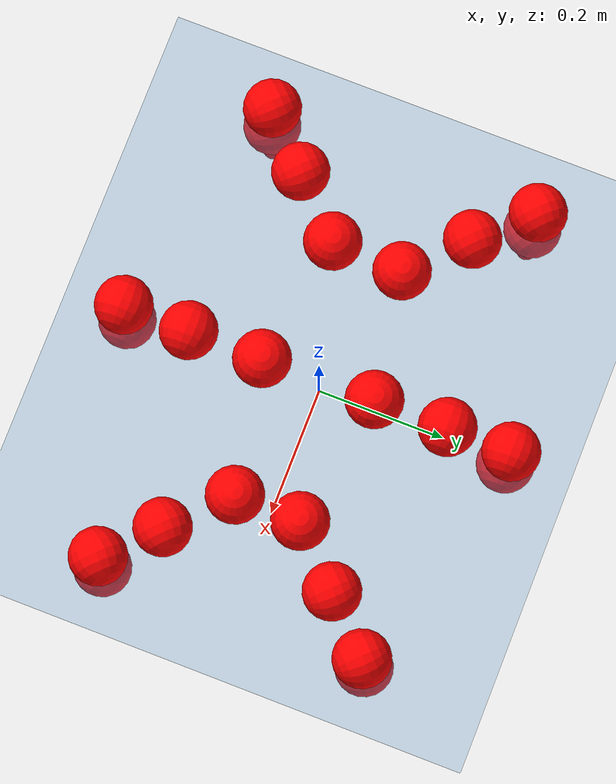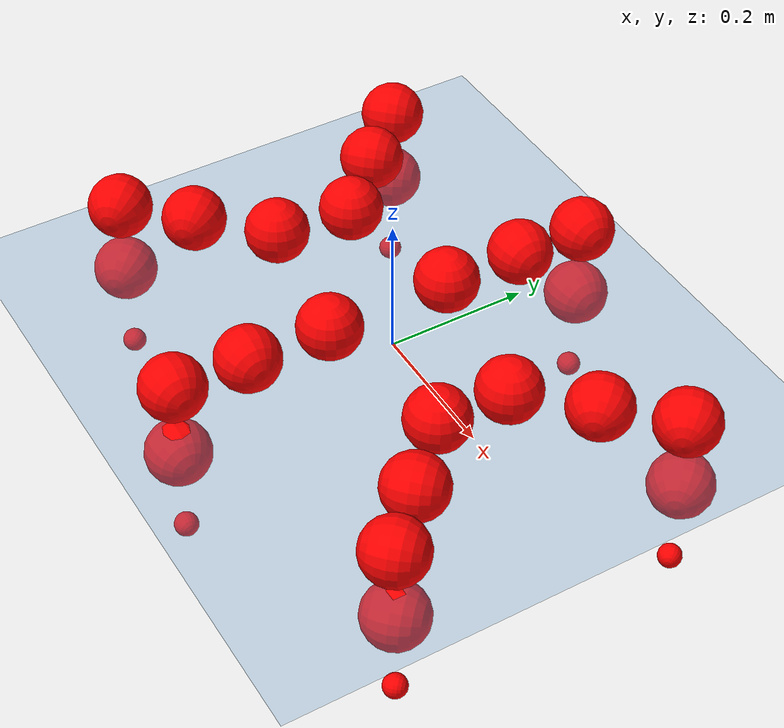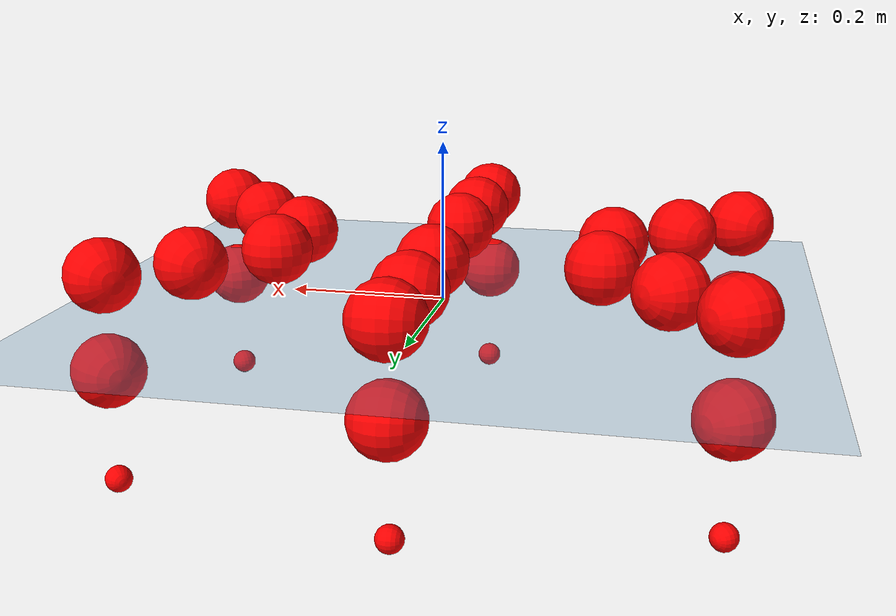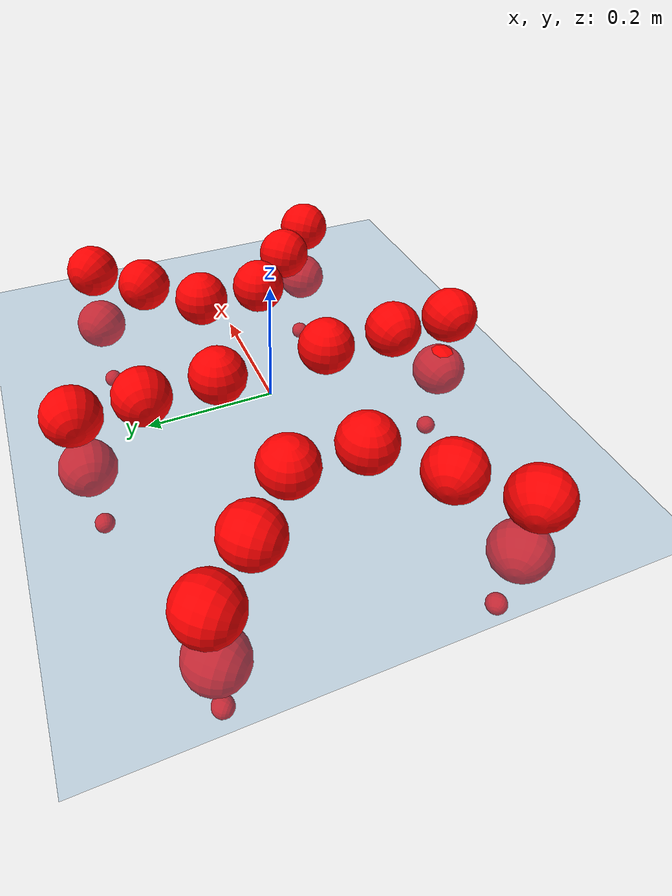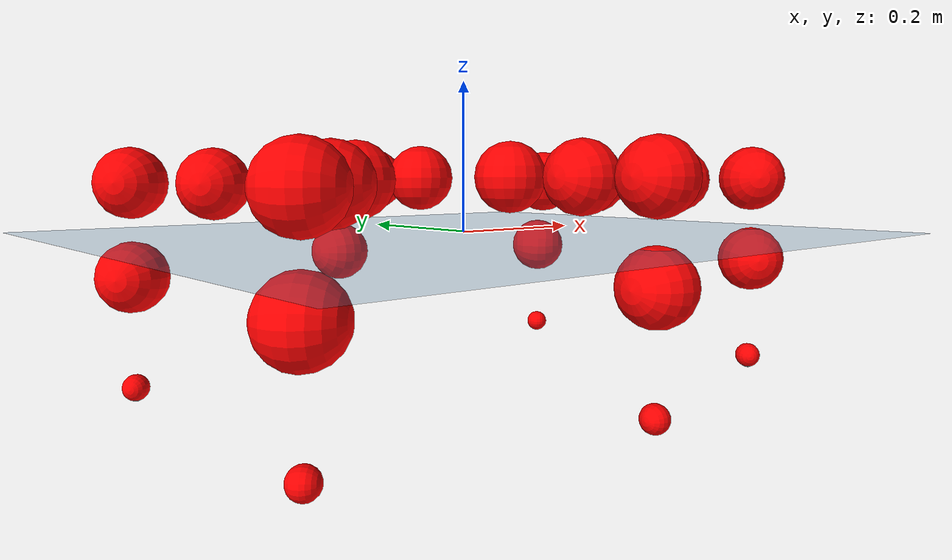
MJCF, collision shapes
<mujoco model="Golem">
  <compiler angle="radian" assetdir="assets" balanceinertia="true" inertiafromgeom="false"/>

  <option timestep="0.005" density="1.2" viscosity="2e-05"/>

  <size nkey="1"/>

  <visual>
    <quality shadowsize="8192"/>
    <map shadowclip="0.5"/>
  </visual>

  <default>
    <default class="/">
      <joint armature="0.01" damping="0.01" frictionloss="0.01"/>
      <geom contype="0" conaffinity="0" group="1" solref="-1000 -80"/>
      <site size="0.01 0.005 0.005" group="5"/>
      <general forcelimited="true" biastype="affine" gainprm="25" biasprm="0 -25 -0.5"/>
      <default class="visual">
        <geom type="mesh" group="2"/>
      </default>
      <default class="collision">
        <geom group="3"/>
      </default>
      <default class="foot">
        <geom size="0.01 0 0" condim="6" group="4" priority="1" solimp="0.015 1 0.01"/>
      </default>
      <default class="reward_collision_sphere">
        <geom group="5" rgba="1 0 0 1"/>
      </default>
    </default>
  </default>

  <asset>
    <texture type="skybox" colorspace="auto" name="//unnamed_texture_0" builtin="gradient" rgb1="0.95 0.95 0.95" rgb2="0.95 0.95 0.95" width="100" height="600"/>
    <texture type="2d" colorspace="auto" name="texplane" builtin="checker" rgb1="0.345 0.575 0.748" rgb2="0.345 0.575 0.748" markrgb="1 1 1" width="512" height="512"/>
    <material name="MatPlane" class="/" texture="texplane" texuniform="true" texrepeat="2 2" specular="0.9"/>
    <mesh name="body" class="/" file="body.stl" scale="0.001 0.001 0.001"/>
    <mesh name="coxa" class="/" file="coxa.stl" scale="0.001 0.001 0.001"/>
    <mesh name="femur" class="/" file="femur.stl" scale="0.001 0.001 0.001"/>
    <mesh name="tibia" class="/" file="tibia.stl" scale="0.001 0.001 0.001"/>
    <mesh name="tarsus" class="/" file="tarsus.stl" scale="0.001 0.001 0.001"/>
  </asset>

  <worldbody>
    <geom name="floor" class="/" size="100 100 0.125" type="plane" group="0" material="MatPlane"/>
    <light name="toplight_shadow" class="/" pos="0 0 5" dir="0.0990148 0.0990148 -0.990148" type="directional" ambient="0.04 0.04 0.04" diffuse="0.55 0.55 0.55" specular="0.12 0.12 0.12"/>
    <light name="toplight_fill" class="/" pos="0 0 5" dir="0.0990148 0.0990148 -0.990148" type="directional" castshadow="false" ambient="0.04 0.04 0.04" diffuse="0.3 0.3 0.3" specular="0.08 0.08 0.08"/>
    <body name="trunk" pos="-0.00280549 -0.00282252 0.000133565" quat="0.999999 -0.000467542 0.00104368 -0.000403769">
      <inertial pos="0.0031833 -0.000659706 -0.00144875" quat="0.9999 0.00988076 -0.00335571 0.00955036" mass="5.47292" diaginertia="0.0386895 0.00956812 0.0154969"/>
      <joint name="//unnamed_joint_0" type="free"/>
      <geom name="//unnamed_geom_1" class="/" pos="0 0 0.0689625" quat="1 0 0 0" type="mesh" rgba="0.9 0.9 0.9 1" mesh="body"/>
      <site name="imu" class="/" pos="0.180768 0.0140392 0.106856" size="0.0112241"/>
      <camera name="track" class="/" pos="0 -1.9684 0" quat="0.707107 0.707107 0 0" mode="trackcom"/>
      <camera name="ego_camera" class="/" pos="0.169716 0 0.107754" quat="-0.5 -0.5 0.5 0.5"/>
      <body name="coxa_RR" pos="-0.234279 -0.0839321 0.0701574" quat="0.381997 -0.00013774 -0.000292181 -0.924164">
        <inertial pos="-0.000311138 -0.000313266 0.00200426" quat="0.999999 0.000628025 0.000472224 -0.000622911" mass="0.286886" diaginertia="0.0370508 0.00923277 0.0146925"/>
        <joint name="coxa_joint_RR" class="/" pos="0 0 0" axis="-0.000582691 0.00232623 -0.999997" range="-3.13618 3.09214" armature="0.0113063" damping="0.00450349" frictionloss="0.0117741"/>
        <geom name="//unnamed_geom_2" class="/" type="mesh" rgba="0.2 0.2 0.2 1" mesh="coxa"/>
        <geom name="//unnamed_geom_3" class="reward_collision_sphere" size="0.0448966" pos="-0.0391652 0 0"/>
        <body name="femur_RR" pos="0.0797881 0.000497346 -0.00337308" quat="0.499897 -0.499914 0.499946 0.500242">
          <inertial pos="-0.000903653 -9.26795e-06 -4.15304e-05" quat="0.999996 -0.000616886 -0.00286713 -0.000324852" mass="0.274331" diaginertia="0.037004 0.00906087 0.0142478"/>
          <joint name="femur_joint_RR" class="/" pos="0 0 0" axis="-0.00821844 -0.0086907 -0.999928" range="-3.16436 3.12917" armature="0.0119396" damping="0.0202994" frictionloss="0.0112702"/>
          <geom name="//unnamed_geom_4" class="/" type="mesh" rgba="0.9 0.9 0.9 1" mesh="femur"/>
          <geom name="//unnamed_geom_5" class="reward_collision_sphere" size="0.0448966"/>
          <body name="tibia_RR" pos="0.00130993 -0.107848 -0.000471081" quat="0.000474244 1 0.000138326 0.000120824">
            <inertial pos="3.34317e-05 1.52409e-05 -0.00203295" quat="0.999901 -0.000872949 -0.00374337 -0.0135572" mass="0.289875" diaginertia="0.0376454 0.00950017 0.0145596"/>
            <joint name="tibia_joint_RR" class="/" pos="0 0 0" axis="-0.0121392 -0.00380154 0.999919" range="-3.19622 3.13751" armature="0.00983415" damping="0" frictionloss="0.009821"/>
            <geom name="//unnamed_geom_6" class="/" type="mesh" rgba="0.2 0.2 0.2 1" mesh="tibia"/>
            <geom name="//unnamed_geom_7" class="reward_collision_sphere" size="0.0448966"/>
            <body name="tarsus_RR" pos="0.113707 0.00269973 -0.000596863" quat="1 1.22641e-05 -1.19584e-05 -1.68445e-06">
              <inertial pos="0.0769928 6.78291e-05 -0.000673214" quat="0.498232 0.499912 0.499499 0.502349" mass="0.27234" diaginertia="0.0377141 0.00883282 0.0143417"/>
              <joint name="tarsus_joint_RR" class="/" pos="0 0 0" axis="-6.21272e-05 -0.00129598 0.999999" range="-3.11925 3.08271" armature="0.00990453" damping="0.0427097" frictionloss="0.0119228"/>
              <geom name="//unnamed_geom_8" class="/" type="mesh" rgba="0.9 0.9 0.9 1" mesh="tarsus"/>
              <geom name="foot_1" class="foot" size="0.0112124" pos="0.146217 0 0" quat="0 -0.707107 0 0.707107"/>
              <geom name="//unnamed_geom_10" class="reward_collision_sphere" size="0.0448966"/>
              <geom name="//unnamed_geom_11" class="reward_collision_sphere" size="0.0168362" pos="0.140342 0 0"/>
              <site name="foot_1" class="foot" pos="0.146217 0 0" quat="0 -0.707107 0 0.707107" size="0.0112241"/>
            </body>
          </body>
        </body>
      </body>
      <body name="coxa_RM" pos="-0.000175251 -0.12884 0.0733221" quat="0.707042 -0.000353596 8.87253e-05 -0.707171">
        <inertial pos="-0.00224866 -0.000190493 -0.00147038" quat="0.999916 0.00512835 -0.0116674 -0.0024071" mass="0.282535" diaginertia="0.036411 0.00921586 0.014"/>
        <joint name="coxa_joint_RM" class="/" pos="0 0 0" axis="-0.00415331 -0.00267888 -0.999988" stiffness="0.00499981" range="-3.14496 3.15362" armature="0.0109935" damping="0.0122135" frictionloss="0.00986324"/>
        <geom name="//unnamed_geom_12" class="/" type="mesh" rgba="0.2 0.2 0.2 1" mesh="coxa"/>
        <geom name="//unnamed_geom_13" class="reward_collision_sphere" size="0.0448966" pos="-0.0391652 0 0"/>
        <body name="femur_RM" pos="0.0788185 -0.000235722 0.000299139" quat="0.499602 -0.499672 0.499444 0.501279">
          <inertial pos="0.00132721 0.000205536 7.62463e-05" quat="0.999991 0.00306884 -0.000212677 0.00303044" mass="0.279096" diaginertia="0.0382684 0.0089322 0.0145138"/>
          <joint name="femur_joint_RM" class="/" pos="0 0 0" axis="0.00361041 -0.0106102 -0.999937" range="-3.15248 3.12739" armature="0.0122962" damping="0.0196216" frictionloss="0.01172"/>
          <geom name="//unnamed_geom_14" class="/" type="mesh" rgba="0.9 0.9 0.9 1" mesh="femur"/>
          <geom name="//unnamed_geom_15" class="reward_collision_sphere" size="0.0448966"/>
          <body name="tibia_RM" pos="-0.000811592 -0.104739 -0.00108534" quat="-5.09106e-05 1 -2.90431e-05 0.000148545">
            <inertial pos="-0.000717321 0.00241239 -0.00279706" quat="0.999999 -0.000524831 0.000865044 0.000616311" mass="0.29615" diaginertia="0.039526 0.00902922 0.0145176"/>
            <joint name="tibia_joint_RM" class="/" pos="0 0 0" axis="0.00674366 -0.0107738 0.999919" range="-3.15762 3.09464" armature="0.0116442" damping="0.0116324" frictionloss="0.0100401"/>
            <geom name="//unnamed_geom_16" class="/" type="mesh" rgba="0.2 0.2 0.2 1" mesh="tibia"/>
            <geom name="//unnamed_geom_17" class="reward_collision_sphere" size="0.0448966"/>
            <body name="tarsus_RM" pos="0.116462 0.00141778 0.000424907" quat="1 -0.000307494 0.000522789 -9.17403e-05">
              <inertial pos="0.0784024 -0.000955956 0.00109885" quat="0.498276 0.500565 0.499925 0.50123" mass="0.285179" diaginertia="0.0378089 0.00938303 0.0153063"/>
              <joint name="tarsus_joint_RM" class="/" pos="0 0 0" axis="0.00746002 -0.0106061 0.999916" stiffness="0.000164703" range="-3.16056 3.13383" armature="0.0110772" damping="0.00541648" frictionloss="0.0106507"/>
              <geom name="//unnamed_geom_18" class="/" type="mesh" rgba="0.9 0.9 0.9 1" mesh="tarsus"/>
              <geom name="foot_2" class="foot" size="0.0106708" pos="0.146217 0 0" quat="0 -0.707107 0 0.707107"/>
              <geom name="//unnamed_geom_20" class="reward_collision_sphere" size="0.0448966"/>
              <geom name="//unnamed_geom_21" class="reward_collision_sphere" size="0.0168362" pos="0.140342 0 0"/>
              <site name="foot_2" class="foot" pos="0.146217 0 0" quat="0 -0.707107 0 0.707107" size="0.0112241"/>
            </body>
          </body>
        </body>
      </body>
      <body name="coxa_RF" pos="0.232777 -0.0802661 0.0676785" quat="0.923843 0.000553256 6.80222e-06 -0.382772">
        <inertial pos="-0.000304325 0.00014345 -0.00100801" quat="0.999942 -0.00306181 -0.00293906 -0.00985333" mass="0.289236" diaginertia="0.0403443 0.00932775 0.0148551"/>
        <joint name="coxa_joint_RF" class="/" pos="0 0 0" axis="-0.000304712 -0.000140736 -1" range="-3.18679 3.13605" armature="0.0125526" damping="0.0118036" frictionloss="0.0102445"/>
        <geom name="//unnamed_geom_22" class="/" type="mesh" rgba="0.2 0.2 0.2 1" mesh="coxa"/>
        <geom name="//unnamed_geom_23" class="reward_collision_sphere" size="0.0448966" pos="-0.0391652 0 0"/>
        <body name="femur_RF" pos="0.0781979 0.00115265 0.00130767" quat="0.500175 -0.499364 0.500317 0.500144">
          <inertial pos="0.00282152 0.000852064 0.00275277" quat="0.999988 0.00467161 -0.00149516 0.000966922" mass="0.27454" diaginertia="0.039482 0.00903221 0.0147505"/>
          <joint name="femur_joint_RF" class="/" pos="0 0 0" axis="-0.0130424 0.00680393 -0.999892" range="-3.14252 3.08198" armature="0.0115105" damping="0.0102888" frictionloss="0.0106753"/>
          <geom name="//unnamed_geom_24" class="/" type="mesh" rgba="0.9 0.9 0.9 1" mesh="femur"/>
          <geom name="//unnamed_geom_25" class="reward_collision_sphere" size="0.0448966"/>
          <body name="tibia_RF" pos="-0.00265203 -0.104601 0.00191405" quat="-0.000252159 1 0.00048046 -0.000127592">
            <inertial pos="-0.0010783 -0.0022041 0.00150479" quat="0.999902 -0.00375542 -0.0134569 -0.00132042" mass="0.292707" diaginertia="0.0378075 0.00913117 0.0144768"/>
            <joint name="tibia_joint_RF" class="/" pos="0 0 0" axis="0.000277362 0.000218663 1" range="-3.15829 3.08378" armature="0.0117292" damping="0.0220838" frictionloss="0.0106694"/>
            <geom name="//unnamed_geom_26" class="/" type="mesh" rgba="0.2 0.2 0.2 1" mesh="tibia"/>
            <geom name="//unnamed_geom_27" class="reward_collision_sphere" size="0.0448966"/>
            <body name="tarsus_RF" pos="0.115039 0.0016006 -0.00160171" quat="0.999999 -0.000756609 -0.000736336 -0.000990791">
              <inertial pos="0.0799427 0.000116637 0.00118784" quat="0.497925 0.50037 0.499701 0.501995" mass="0.288072" diaginertia="0.0388824 0.00924826 0.0140305"/>
              <joint name="tarsus_joint_RF" class="/" pos="0 0 0" axis="0.00229835 -0.00495894 0.999985" range="-3.19573 3.14467" armature="0.0126228" damping="0.00537822" frictionloss="0.0113637"/>
              <geom name="//unnamed_geom_28" class="/" type="mesh" rgba="0.9 0.9 0.9 1" mesh="tarsus"/>
              <geom name="foot_3" class="foot" size="0.0117847" pos="0.146217 0 0" quat="0 -0.707107 0 0.707107"/>
              <geom name="//unnamed_geom_30" class="reward_collision_sphere" size="0.0448966"/>
              <geom name="//unnamed_geom_31" class="reward_collision_sphere" size="0.0168362" pos="0.140342 0 0"/>
              <site name="foot_3" class="foot" pos="0.146217 0 0" quat="0 -0.707107 0 0.707107" size="0.0112241"/>
            </body>
          </body>
        </body>
      </body>
      <body name="coxa_LR" pos="-0.230136 0.0846232 0.0653004" quat="0.383262 -0.00038449 -0.000425619 0.92364">
        <inertial pos="0.000496292 0.000652186 -0.000436969" quat="0.999922 -0.00796923 0.000786905 0.00956689" mass="0.276044" diaginertia="0.0379519 0.00925246 0.0146456"/>
        <joint name="coxa_joint_LR" class="/" pos="0 0 0" axis="0.00240111 -0.000849653 -0.999997" stiffness="0.0128203" range="-3.16684 3.14882" armature="0.0126687" damping="0.0093816" frictionloss="0.0109289"/>
        <geom name="//unnamed_geom_32" class="/" type="mesh" rgba="0.2 0.2 0.2 1" mesh="coxa"/>
        <geom name="//unnamed_geom_33" class="reward_collision_sphere" size="0.0448966" pos="-0.0391652 0 0"/>
        <body name="femur_LR" pos="0.0781322 0.0019984 -0.000770829" quat="0.500443 -0.500086 0.49984 0.49963">
          <inertial pos="0.000821447 0.000961105 0.000699089" quat="0.999902 0.0107022 0.00749833 0.00507787" mass="0.27344" diaginertia="0.0355395 0.00893673 0.0138473"/>
          <joint name="femur_joint_LR" class="/" pos="0 0 0" axis="0.00288175 -0.00694139 0.999972" range="-3.16289 3.08891" armature="0.0126653" damping="0" frictionloss="0.0104181"/>
          <geom name="//unnamed_geom_34" class="/" type="mesh" rgba="0.9 0.9 0.9 1" mesh="femur"/>
          <geom name="//unnamed_geom_35" class="reward_collision_sphere" size="0.0448966"/>
          <body name="tibia_LR" pos="-0.000929408 -0.107163 -0.00268276" quat="-0.000734038 0.999999 0.0010584 1.47278e-05">
            <inertial pos="0.00284259 0.00112367 0.000286869" quat="0.999928 -0.00562781 -0.0105046 0.000992754" mass="0.276894" diaginertia="0.0385742 0.00962188 0.0146359"/>
            <joint name="tibia_joint_LR" class="/" pos="0 0 0" axis="0.00638828 -0.000113694 -0.99998" stiffness="0.00864198" range="-3.14374 3.12902" armature="0.0122205" damping="0.0139075" frictionloss="0.0127927"/>
            <geom name="//unnamed_geom_36" class="/" type="mesh" rgba="0.2 0.2 0.2 1" mesh="tibia"/>
            <geom name="//unnamed_geom_37" class="reward_collision_sphere" size="0.0448966"/>
            <body name="tarsus_LR" pos="0.117738 -0.000692262 -0.00228246" quat="0.999999 0.000504978 0.000653288 -0.000881213">
              <inertial pos="0.0761545 -0.00261355 -0.00191755" quat="0.494169 0.493011 0.505931 0.506726" mass="0.28628" diaginertia="0.038166 0.00928938 0.0145331"/>
              <joint name="tarsus_joint_LR" class="/" pos="0 0 0" axis="-0.000129066 -0.00103343 -0.999999" stiffness="0.00728314" range="-3.13876 3.1347" armature="0.0108742" damping="0.0295954" frictionloss="0.0101642"/>
              <geom name="//unnamed_geom_38" class="/" type="mesh" rgba="0.9 0.9 0.9 1" mesh="tarsus"/>
              <geom name="foot_4" class="foot" size="0.0115898" pos="0.146217 0 0" quat="0.707107 0 -0.707107 0"/>
              <geom name="//unnamed_geom_40" class="reward_collision_sphere" size="0.0448966"/>
              <geom name="//unnamed_geom_41" class="reward_collision_sphere" size="0.0168362" pos="0.140342 0 0"/>
              <site name="foot_4" class="foot" pos="0.146217 0 0" quat="0.707107 0 -0.707107 0" size="0.0112241"/>
            </body>
          </body>
        </body>
      </body>
      <body name="coxa_LM" pos="-0.00305114 0.128251 0.0715647" quat="0.707144 9.50085e-05 -4.75256e-05 0.70707">
        <inertial pos="0.00226246 -0.00164416 -0.00237692" quat="0.999938 -0.00171511 0.00508705 -0.00971518" mass="0.284663" diaginertia="0.0380592 0.0095017 0.0151057"/>
        <joint name="coxa_joint_LM" class="/" pos="0 0 0" axis="-0.00263117 0.00134574 -0.999996" stiffness="0.00237959" range="-3.13403 3.14447" armature="0.0112439" damping="0" frictionloss="0.0121511"/>
        <geom name="//unnamed_geom_42" class="/" type="mesh" rgba="0.2 0.2 0.2 1" mesh="coxa"/>
        <geom name="//unnamed_geom_43" class="reward_collision_sphere" size="0.0448966" pos="-0.0391652 0 0"/>
        <body name="femur_LM" pos="0.0771665 0.0010191 -0.0027549" quat="0.499692 -0.499264 0.499993 0.501049">
          <inertial pos="-0.00222989 0.000124109 -0.0015771" quat="0.999901 -0.00872045 -0.00700036 -0.00858872" mass="0.298858" diaginertia="0.0389663 0.00946433 0.0149885"/>
          <joint name="femur_joint_LM" class="/" pos="0 0 0" axis="-0.000649774 0.00500768 0.999987" range="-3.08324 3.16359" armature="0.0129226" damping="0" frictionloss="0.0110872"/>
          <geom name="//unnamed_geom_44" class="/" type="mesh" rgba="0.9 0.9 0.9 1" mesh="femur"/>
          <geom name="//unnamed_geom_45" class="reward_collision_sphere" size="0.0448966"/>
          <body name="tibia_LM" pos="0.00324561 -0.101547 0.000156247" quat="-8.04486e-05 1 0.00044936 0.000288609">
            <inertial pos="0.000929688 0.0003497 2.15889e-05" quat="0.999999 0.000709993 0.000163387 0.000910457" mass="0.28676" diaginertia="0.0371737 0.00914437 0.0151925"/>
            <joint name="tibia_joint_LM" class="/" pos="0 0 0" axis="0.00835072 0.0102079 -0.999913" range="-3.11338 3.14675" armature="0.0127999" damping="0.00803952" frictionloss="0.00980306"/>
            <geom name="//unnamed_geom_46" class="/" type="mesh" rgba="0.2 0.2 0.2 1" mesh="tibia"/>
            <geom name="//unnamed_geom_47" class="reward_collision_sphere" size="0.0448966"/>
            <body name="tarsus_LM" pos="0.112555 -0.0022346 0.00217282" quat="0.999999 0.00147179 -0.000251136 1.2128e-05">
              <inertial pos="0.0803569 0.00197667 0.00285042" quat="0.49844 0.502856 0.497647 0.501039" mass="0.28587" diaginertia="0.0376615 0.00927634 0.014223"/>
              <joint name="tarsus_joint_LM" class="/" pos="0 0 0" axis="-0.00487071 0.00934901 -0.999944" stiffness="0.00757614" range="-3.1306 3.1259" armature="0.0112742" damping="0.0180254" frictionloss="0.0114352"/>
              <geom name="//unnamed_geom_48" class="/" type="mesh" rgba="0.9 0.9 0.9 1" mesh="tarsus"/>
              <geom name="foot_5" class="foot" size="0.0115587" pos="0.146217 0 0" quat="0.707107 0 -0.707107 0"/>
              <geom name="//unnamed_geom_50" class="reward_collision_sphere" size="0.0448966"/>
              <geom name="//unnamed_geom_51" class="reward_collision_sphere" size="0.0168362" pos="0.140342 0 0"/>
              <site name="foot_5" class="foot" pos="0.146217 0 0" quat="0.707107 0 -0.707107 0" size="0.0112241"/>
            </body>
          </body>
        </body>
      </body>
      <body name="coxa_LF" pos="0.234187 0.0794135 0.066276" quat="0.92401 0.000722959 9.78562e-05 0.382368">
        <inertial pos="-0.00052631 0.000653057 0.000543437" quat="0.999989 0.00444784 -0.00131645 0.00103237" mass="0.276046" diaginertia="0.0368048 0.00958016 0.0146024"/>
        <joint name="coxa_joint_LF" class="/" pos="0 0 0" axis="0.0129041 -0.011214 -0.999854" range="-3.13027 3.11897" armature="0.0110522" damping="0.0237661" frictionloss="0.0120043"/>
        <geom name="//unnamed_geom_52" class="/" type="mesh" rgba="0.2 0.2 0.2 1" mesh="coxa"/>
        <geom name="//unnamed_geom_53" class="reward_collision_sphere" size="0.0448966" pos="-0.0391652 0 0"/>
        <body name="femur_LF" pos="0.075725 0.000865229 -0.00142575" quat="0.500259 -0.500173 0.499011 0.500556">
          <inertial pos="0.00280106 -0.000655805 0.00013439" quat="0.999957 -0.0014575 -0.00731633 0.00550757" mass="0.280236" diaginertia="0.0366297 0.0092372 0.0147241"/>
          <joint name="femur_joint_LF" class="/" pos="0 0 0" axis="-0.0079326 -0.00724139 0.999942" range="-3.13884 3.12182" armature="0.0110924" damping="0" frictionloss="0.0117025"/>
          <geom name="//unnamed_geom_54" class="/" type="mesh" rgba="0.9 0.9 0.9 1" mesh="femur"/>
          <geom name="//unnamed_geom_55" class="reward_collision_sphere" size="0.0448966"/>
          <body name="tibia_LF" pos="-0.000990352 -0.10908 -0.000140765" quat="0.000591417 1 -0.000591077 0.000137387">
            <inertial pos="0.000847776 -0.00117918 0.00034238" quat="0.999999 0.000673227 0.00100458 0.000137593" mass="0.284213" diaginertia="0.0364599 0.00921597 0.0141509"/>
            <joint name="tibia_joint_LF" class="/" pos="0 0 0" axis="0.0110702 0.00413001 -0.99993" range="-3.18229 3.11859" armature="0.0127737" damping="0" frictionloss="0.0120458"/>
            <geom name="//unnamed_geom_56" class="/" type="mesh" rgba="0.2 0.2 0.2 1" mesh="tibia"/>
            <geom name="//unnamed_geom_57" class="reward_collision_sphere" size="0.0448966"/>
            <body name="tarsus_LF" pos="0.11647 0.00273966 -0.00320801" quat="1 5.58174e-06 -5.29882e-06 7.80186e-05">
              <inertial pos="0.0764656 0.000621634 0.000607899" quat="0.501405 0.502912 0.498929 0.496732" mass="0.280892" diaginertia="0.0383942 0.0093701 0.014084"/>
              <joint name="tarsus_joint_LF" class="/" pos="0 0 0" axis="-0.00155843 0.000291763 -0.999999" stiffness="0.0259525" range="-3.10136 3.09569" armature="0.0123255" damping="0.0259061" frictionloss="0.0127422"/>
              <geom name="//unnamed_geom_58" class="/" type="mesh" rgba="0.9 0.9 0.9 1" mesh="tarsus"/>
              <geom name="foot_6" class="foot" size="0.0103153" pos="0.146217 0 0" quat="0.707107 0 -0.707107 0"/>
              <geom name="//unnamed_geom_60" class="reward_collision_sphere" size="0.0448966"/>
              <geom name="//unnamed_geom_61" class="reward_collision_sphere" size="0.0168362" pos="0.140342 0 0"/>
              <site name="foot_6" class="foot" pos="0.146217 0 0" quat="0.707107 0 -0.707107 0" size="0.0112241"/>
            </body>
          </body>
        </body>
      </body>
    </body>
  </worldbody>

  <contact>
    <pair class="/" geom1="floor" geom2="foot_1" name="//unnamed_contact_0"/>
    <pair class="/" geom1="floor" geom2="foot_2" name="//unnamed_contact_1"/>
    <pair class="/" geom1="floor" geom2="foot_3" name="//unnamed_contact_2"/>
    <pair class="/" geom1="floor" geom2="foot_4" name="//unnamed_contact_3"/>
    <pair class="/" geom1="floor" geom2="foot_5" name="//unnamed_contact_4"/>
    <pair class="/" geom1="floor" geom2="foot_6" name="//unnamed_contact_5"/>
  </contact>

  <actuator>
    <general name="coxa_joint_RR" class="/" joint="coxa_joint_RR" forcerange="-7.87186 7.87186" gainprm="26.8185" biasprm="0 -26.8185 -0.534664"/>
    <general name="femur_joint_RR" class="/" joint="femur_joint_RR" forcerange="-8.99004 8.99004" gainprm="26.8185" biasprm="0 -26.8185 -0.534664"/>
    <general name="tibia_joint_RR" class="/" joint="tibia_joint_RR" forcerange="-8.08707 8.08707" gainprm="26.8185" biasprm="0 -26.8185 -0.534664"/>
    <general name="tarsus_joint_RR" class="/" joint="tarsus_joint_RR" forcerange="-9.05119 9.05119" gainprm="26.8185" biasprm="0 -26.8185 -0.534664"/>
    <general name="coxa_joint_RM" class="/" joint="coxa_joint_RM" forcerange="-8.2464 8.2464" gainprm="26.8185" biasprm="0 -26.8185 -0.534664"/>
    <general name="femur_joint_RM" class="/" joint="femur_joint_RM" forcerange="-8.17384 8.17384" gainprm="26.8185" biasprm="0 -26.8185 -0.534664"/>
    <general name="tibia_joint_RM" class="/" joint="tibia_joint_RM" forcerange="-7.69132 7.69132" gainprm="26.8185" biasprm="0 -26.8185 -0.534664"/>
    <general name="tarsus_joint_RM" class="/" joint="tarsus_joint_RM" forcerange="-8.38222 8.38222" gainprm="26.8185" biasprm="0 -26.8185 -0.534664"/>
    <general name="coxa_joint_RF" class="/" joint="coxa_joint_RF" forcerange="-8.35353 8.35353" gainprm="26.8185" biasprm="0 -26.8185 -0.534664"/>
    <general name="femur_joint_RF" class="/" joint="femur_joint_RF" forcerange="-8.41625 8.41625" gainprm="26.8185" biasprm="0 -26.8185 -0.534664"/>
    <general name="tibia_joint_RF" class="/" joint="tibia_joint_RF" forcerange="-8.57384 8.57384" gainprm="26.8185" biasprm="0 -26.8185 -0.534664"/>
    <general name="tarsus_joint_RF" class="/" joint="tarsus_joint_RF" forcerange="-8.96349 8.96349" gainprm="26.8185" biasprm="0 -26.8185 -0.534664"/>
    <general name="coxa_joint_LR" class="/" joint="coxa_joint_LR" forcerange="-8.10128 8.10128" gainprm="26.8185" biasprm="0 -26.8185 -0.534664"/>
    <general name="femur_joint_LR" class="/" joint="femur_joint_LR" forcerange="-7.5031 7.5031" gainprm="26.8185" biasprm="0 -26.8185 -0.534664"/>
    <general name="tibia_joint_LR" class="/" joint="tibia_joint_LR" forcerange="-7.4345 7.4345" gainprm="26.8185" biasprm="0 -26.8185 -0.534664"/>
    <general name="tarsus_joint_LR" class="/" joint="tarsus_joint_LR" forcerange="-7.33804 7.33804" gainprm="26.8185" biasprm="0 -26.8185 -0.534664"/>
    <general name="coxa_joint_LM" class="/" joint="coxa_joint_LM" forcerange="-7.43362 7.43362" gainprm="26.8185" biasprm="0 -26.8185 -0.534664"/>
    <general name="femur_joint_LM" class="/" joint="femur_joint_LM" forcerange="-7.8063 7.8063" gainprm="26.8185" biasprm="0 -26.8185 -0.534664"/>
    <general name="tibia_joint_LM" class="/" joint="tibia_joint_LM" forcerange="-7.38294 7.38294" gainprm="26.8185" biasprm="0 -26.8185 -0.534664"/>
    <general name="tarsus_joint_LM" class="/" joint="tarsus_joint_LM" forcerange="-8.06139 8.06139" gainprm="26.8185" biasprm="0 -26.8185 -0.534664"/>
    <general name="coxa_joint_LF" class="/" joint="coxa_joint_LF" forcerange="-7.57617 7.57617" gainprm="26.8185" biasprm="0 -26.8185 -0.534664"/>
    <general name="femur_joint_LF" class="/" joint="femur_joint_LF" forcerange="-8.49585 8.49585" gainprm="26.8185" biasprm="0 -26.8185 -0.534664"/>
    <general name="tibia_joint_LF" class="/" joint="tibia_joint_LF" forcerange="-9.04282 9.04282" gainprm="26.8185" biasprm="0 -26.8185 -0.534664"/>
    <general name="tarsus_joint_LF" class="/" joint="tarsus_joint_LF" forcerange="-7.45249 7.45249" gainprm="26.8185" biasprm="0 -26.8185 -0.534664"/>
  </actuator>

  <sensor>
    <gyro site="imu" name="imu_angular_velocity"/>
    <velocimeter site="imu" name="imu_linear_velocity"/>
    <framelinvel objtype="site" objname="foot_1" name="foot_1_global_linear_velocity"/>
    <framelinvel objtype="site" objname="foot_2" name="foot_2_global_linear_velocity"/>
    <framelinvel objtype="site" objname="foot_3" name="foot_3_global_linear_velocity"/>
    <framelinvel objtype="site" objname="foot_4" name="foot_4_global_linear_velocity"/>
    <framelinvel objtype="site" objname="foot_5" name="foot_5_global_linear_velocity"/>
    <framelinvel objtype="site" objname="foot_6" name="foot_6_global_linear_velocity"/>
  </sensor>

  <keyframe>
    <key name="home" qpos="0 0 0.1457 1 0 0 0 0 0 0 0 0 0 0 0 0 0 0 0 0 0 0 0 0 0 0 0 0 0 0 0"/>
  </keyframe>
</mujoco>
